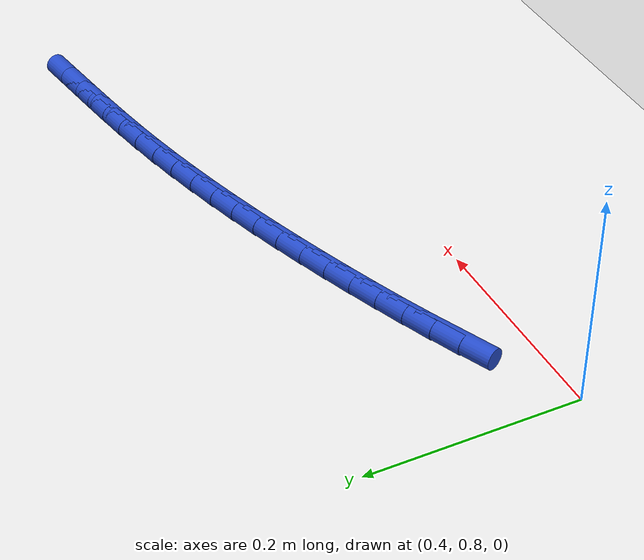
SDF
<sdf version="1.6">
 <world name="default">
  <model name="ground_plane">
   <static>1</static>
   <link name="link">
    <collision name="collision">
     <geometry><plane><normal>0 0 1</normal><size>100 100</size></plane></geometry>
     <surface><friction><ode><mu>100</mu><mu2>50</mu2></ode></friction></surface>
    </collision>
    <visual name="visual">
     <cast_shadows>0</cast_shadows>
     <geometry><plane><normal>0 0 1</normal><size>100 100</size></plane></geometry>
     <material>
      <script><uri>file://media/materials/scripts/gazebo.material</uri><name>Gazebo/WhiteGlow</name></script>
     </material>
    </visual>
   </link>
  </model>
  <model name="line">
   <link name="link_36">
    <pose>0.49948776982090554 0.8602125977563568 0.01 0 1.57 0.4182495026088129</pose>
    <collision name="collision">
     <geometry><cylinder><radius>0.01</radius><length>0.08</length></cylinder></geometry>
    </collision>
    <visual name="visual">
     <material>
      <script><name>Gazebo/Blue</name><uri>file://media/materials/scripts/gazebo.material</uri></script>
     </material>
     <geometry><cylinder><radius>0.01</radius><length>0.08</length></cylinder></geometry>
    </visual>
   </link>
   <link name="link_37">
    <pose>0.5262865356817495 0.8721239682318719 0.01 0 1.57 0.3938142040465649</pose>
    <collision name="collision">
     <geometry><cylinder><radius>0.01</radius><length>0.08</length></cylinder></geometry>
    </collision>
    <visual name="visual">
     <material>
      <script><name>Gazebo/Blue</name><uri>file://media/materials/scripts/gazebo.material</uri></script>
     </material>
     <geometry><cylinder><radius>0.01</radius><length>0.08</length></cylinder></geometry>
    </visual>
   </link>
   <link name="link_38">
    <pose>0.5534393435091479 0.8834065196049584 0.01 0 1.57 0.37484848022260714</pose>
    <collision name="collision">
     <geometry><cylinder><radius>0.01</radius><length>0.08</length></cylinder></geometry>
    </collision>
    <visual name="visual">
     <material>
      <script><name>Gazebo/Blue</name><uri>file://media/materials/scripts/gazebo.material</uri></script>
     </material>
     <geometry><cylinder><radius>0.01</radius><length>0.08</length></cylinder></geometry>
    </visual>
   </link>
   <link name="link_39">
    <pose>0.5808131952597871 0.8941768050958566 0.01 0 1.57 0.3610011816943121</pose>
    <collision name="collision">
     <geometry><cylinder><radius>0.01</radius><length>0.08</length></cylinder></geometry>
    </collision>
    <visual name="visual">
     <material>
      <script><name>Gazebo/Blue</name><uri>file://media/materials/scripts/gazebo.material</uri></script>
     </material>
     <geometry><cylinder><radius>0.01</radius><length>0.08</length></cylinder></geometry>
    </visual>
   </link>
   <link name="link_40">
    <pose>0.6082796890626223 0.9045466785115209 0.01 0 1.57 0.3490017522980796</pose>
    <collision name="collision">
     <geometry><cylinder><radius>0.01</radius><length>0.08</length></cylinder></geometry>
    </collision>
    <visual name="visual">
     <material>
      <script><name>Gazebo/Blue</name><uri>file://media/materials/scripts/gazebo.material</uri></script>
     </material>
     <geometry><cylinder><radius>0.01</radius><length>0.08</length></cylinder></geometry>
    </visual>
   </link>
   <link name="link_41">
    <pose>0.6357820751471124 0.9145547320809587 0.01 0 1.57 0.33630322844325317</pose>
    <collision name="collision">
     <geometry><cylinder><radius>0.01</radius><length>0.08</length></cylinder></geometry>
    </collision>
    <visual name="visual">
     <material>
      <script><name>Gazebo/Blue</name><uri>file://media/materials/scripts/gazebo.material</uri></script>
     </material>
     <geometry><cylinder><radius>0.01</radius><length>0.08</length></cylinder></geometry>
    </visual>
   </link>
   <link name="link_42">
    <pose>0.6633202726406509 0.9241816162163449 0.01 0 1.57 0.32282582056405384</pose>
    <collision name="collision">
     <geometry><cylinder><radius>0.01</radius><length>0.08</length></cylinder></geometry>
    </collision>
    <visual name="visual">
     <material>
      <script><name>Gazebo/Blue</name><uri>file://media/materials/scripts/gazebo.material</uri></script>
     </material>
     <geometry><cylinder><radius>0.01</radius><length>0.08</length></cylinder></geometry>
    </visual>
   </link>
   <link name="link_43">
    <pose>0.6908957484080606 0.9334063988265403 0.01 0 1.57 0.30855931035866546</pose>
    <collision name="collision">
     <geometry><cylinder><radius>0.01</radius><length>0.08</length></cylinder></geometry>
    </collision>
    <visual name="visual">
     <material>
      <script><name>Gazebo/Blue</name><uri>file://media/materials/scripts/gazebo.material</uri></script>
     </material>
     <geometry><cylinder><radius>0.01</radius><length>0.08</length></cylinder></geometry>
    </visual>
   </link>
   <link name="link_44">
    <pose>0.7185099693141656 0.9422081478204061 0.01 0 1.57 0.2934942522518183</pose>
    <collision name="collision">
     <geometry><cylinder><radius>0.01</radius><length>0.08</length></cylinder></geometry>
    </collision>
    <visual name="visual">
     <material>
      <script><name>Gazebo/Blue</name><uri>file://media/materials/scripts/gazebo.material</uri></script>
     </material>
     <geometry><cylinder><radius>0.01</radius><length>0.08</length></cylinder></geometry>
    </visual>
   </link>
   <link name="link_45">
    <pose>0.7461644022237894 0.950565931106804 0.01 0 1.57 0.2776222474836037</pose>
    <collision name="collision">
     <geometry><cylinder><radius>0.01</radius><length>0.08</length></cylinder></geometry>
    </collision>
    <visual name="visual">
     <material>
      <script><name>Gazebo/Blue</name><uri>file://media/materials/scripts/gazebo.material</uri></script>
     </material>
     <geometry><cylinder><radius>0.01</radius><length>0.08</length></cylinder></geometry>
    </visual>
   </link>
   <link name="link_46">
    <pose>0.7738605140017553 0.958458816594595 0.01 0 1.57 0.26093624460068987</pose>
    <collision name="collision">
     <geometry><cylinder><radius>0.01</radius><length>0.08</length></cylinder></geometry>
    </collision>
    <visual name="visual">
     <material>
      <script><name>Gazebo/Blue</name><uri>file://media/materials/scripts/gazebo.material</uri></script>
     </material>
     <geometry><cylinder><radius>0.01</radius><length>0.08</length></cylinder></geometry>
    </visual>
   </link>
   <link name="link_47">
    <pose>0.8015997715128873 0.965865872192641 0.01 0 1.57 0.243430865469359</pose>
    <collision name="collision">
     <geometry><cylinder><radius>0.01</radius><length>0.08</length></cylinder></geometry>
    </collision>
    <visual name="visual">
     <material>
      <script><name>Gazebo/Blue</name><uri>file://media/materials/scripts/gazebo.material</uri></script>
     </material>
     <geometry><cylinder><radius>0.01</radius><length>0.08</length></cylinder></geometry>
    </visual>
   </link>
   <link name="link_48">
    <pose>0.8293836416220086 0.9727661658098025 0.01 0 1.57 0.22510275486886466</pose>
    <collision name="collision">
     <geometry><cylinder><radius>0.01</radius><length>0.08</length></cylinder></geometry>
    </collision>
    <visual name="visual">
     <material>
      <script><name>Gazebo/Blue</name><uri>file://media/materials/scripts/gazebo.material</uri></script>
     </material>
     <geometry><cylinder><radius>0.01</radius><length>0.08</length></cylinder></geometry>
    </visual>
   </link>
   <link name="link_49">
    <pose>0.8572135911939428 0.9791387653549414 0.01 0 1.57 0.2059509504466292</pose>
    <collision name="collision">
     <geometry><cylinder><radius>0.01</radius><length>0.08</length></cylinder></geometry>
    </collision>
    <visual name="visual">
     <material>
      <script><name>Gazebo/Blue</name><uri>file://media/materials/scripts/gazebo.material</uri></script>
     </material>
     <geometry><cylinder><radius>0.01</radius><length>0.08</length></cylinder></geometry>
    </visual>
   </link>
   <link name="link_50">
    <pose>0.8850910870935139 0.9849627387369191 0.01 0 1.57 0.18664070209297404</pose>
    <collision name="collision">
     <geometry><cylinder><radius>0.01</radius><length>0.08</length></cylinder></geometry>
    </collision>
    <visual name="visual">
     <material>
      <script><name>Gazebo/Blue</name><uri>file://media/materials/scripts/gazebo.material</uri></script>
     </material>
     <geometry><cylinder><radius>0.01</radius><length>0.08</length></cylinder></geometry>
    </visual>
   </link>
   <link name="link_51">
    <pose>0.9130198151433598 0.9902367585638872 0.01 0 1.57 0.17068896234548728</pose>
    <collision name="collision">
     <geometry><cylinder><radius>0.01</radius><length>0.08</length></cylinder></geometry>
    </collision>
    <visual name="visual">
     <material>
      <script><name>Gazebo/Blue</name><uri>file://media/materials/scripts/gazebo.material</uri></script>
     </material>
     <geometry><cylinder><radius>0.01</radius><length>0.08</length></cylinder></geometry>
    </visual>
   </link>
   <link name="link_52">
    <pose>0.9410150851031198 0.9950621960117496 0.01 0 1.57 0.15930778160910172</pose>
    <collision name="collision">
     <geometry><cylinder><radius>0.01</radius><length>0.08</length></cylinder></geometry>
    </collision>
    <visual name="visual">
     <material>
      <script><name>Gazebo/Blue</name><uri>file://media/materials/scripts/gazebo.material</uri></script>
     </material>
     <geometry><cylinder><radius>0.01</radius><length>0.08</length></cylinder></geometry>
    </visual>
   </link>
   <link name="link_53">
    <pose>0.9690960000750288 0.9995739367921072 0.01 0 1.57 0.15253468439287154</pose>
    <collision name="collision">
     <geometry><cylinder><radius>0.01</radius><length>0.08</length></cylinder></geometry>
    </collision>
    <visual name="visual">
     <material>
      <script><name>Gazebo/Blue</name><uri>file://media/materials/scripts/gazebo.material</uri></script>
     </material>
     <geometry><cylinder><radius>0.01</radius><length>0.08</length></cylinder></geometry>
    </visual>
   </link>
   <link name="link_54">
    <pose>0.9972816652687317 1.003906885235725 0.01 0 1.57 0.15036241989954485</pose>
    <collision name="collision">
     <geometry><cylinder><radius>0.01</radius><length>0.08</length></cylinder></geometry>
    </collision>
    <visual name="visual">
     <material>
      <script><name>Gazebo/Blue</name><uri>file://media/materials/scripts/gazebo.material</uri></script>
     </material>
     <geometry><cylinder><radius>0.01</radius><length>0.08</length></cylinder></geometry>
    </visual>
   </link>
  </model>
 </world>
</sdf>
